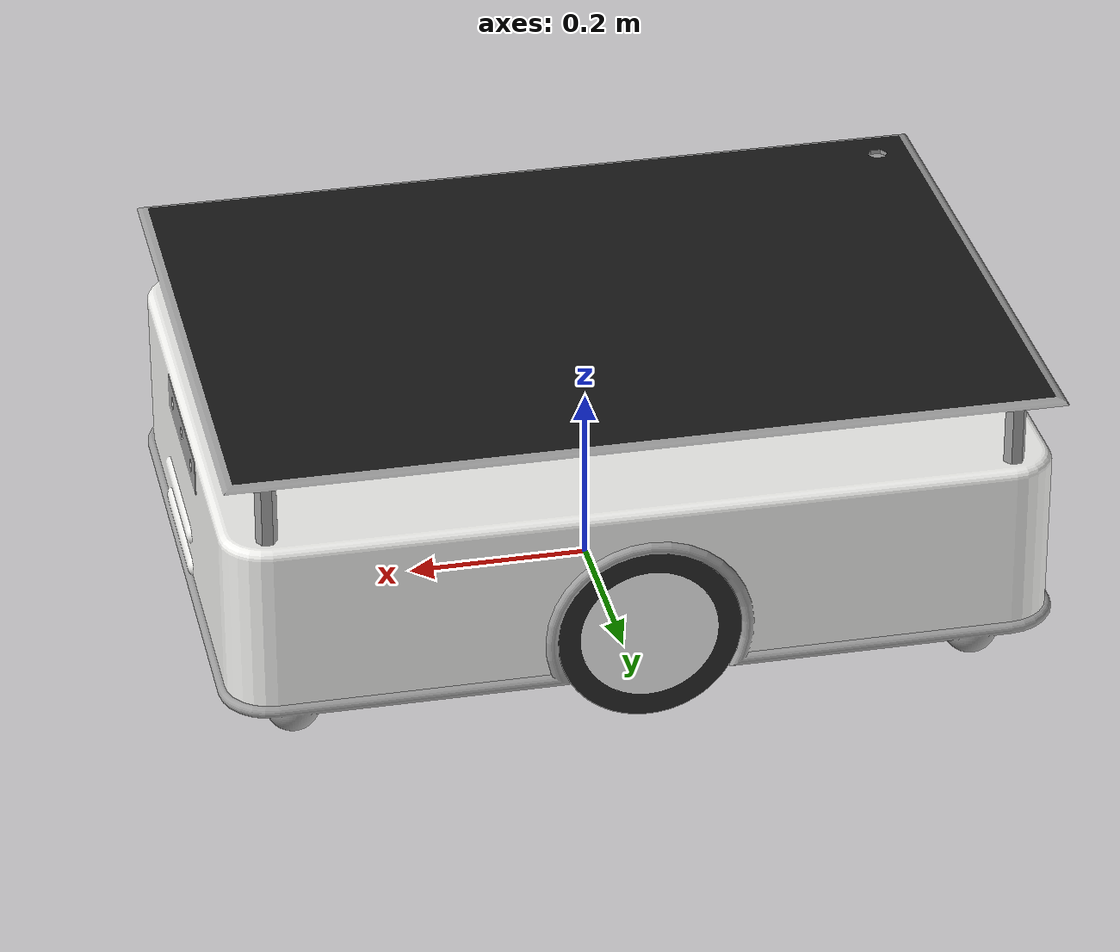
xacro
<?xml version="1.0"?>
<robot xmlns:xacro="http://www.ros.org/wiki/xacro" name="bcr_bot">

    <!--................................ XACRO CONSTANTS .............................. -->

    <xacro:property name="chassis_mass" value="70"/>
    <xacro:property name="chassis_length" value="0.9"/>
    <xacro:property name="chassis_width" value="0.64"/>
    <xacro:property name="chassis_height" value="0.19"/>

    <xacro:property name="traction_wheel_mass" value="1"/>
    <xacro:property name="traction_wheel_base" value="0.88"/>
    <xacro:property name="traction_max_wheel_torque" value="20000"/>
    <xacro:property name="traction_wheel_friction" value="5.0"/>

    <xacro:property name="trolley_wheel_mass" value="0.1"/>
    <xacro:property name="trolley_track_width" value="0.54"/>
    <xacro:property name="trolley_wheel_friction" value="0.0"/>
    <xacro:property name="trolley_wheel_radius" value="0.06"/>
    <!-- a small constant -->
    <xacro:property name="eps" value="0.002"/>

    <xacro:property name="traction_wheel_radius" value="0.1"/>
    <xacro:property name="traction_wheel_width" value="0.05"/>
    <xacro:property name="traction_track_width" value="0.6"/>

    <xacro:property name="two_d_lidar_update_rate" value="30"/>
    <xacro:property name="two_d_lidar_sample_size" value="361"/>
    <xacro:property name="two_d_lidar_min_angle" value="0"/>
    <xacro:property name="two_d_lidar_max_angle" value="360"/>
    <xacro:property name="two_d_lidar_min_range" value="0.55"/>
    <xacro:property name="two_d_lidar_max_range" value="16"/>

    <xacro:property name="camera_baseline" value="0.06"/>
    <xacro:property name="camera_height" value="0.10"/>
    <xacro:property name="camera_horizontal_fov" value="60"/>

    <xacro:arg name="robot_namespace" default=""/>
    <xacro:arg name="wheel_odom_topic" default="odom" />
    <xacro:arg name="camera_enabled" default="false" />
    <xacro:arg name="stereo_camera_enabled" default="false" />
    <xacro:arg name="two_d_lidar_enabled" default="false" />
    <xacro:arg name="publish_wheel_odom_tf" default="true" />
    <xacro:arg name="conveyor_enabled" default="false"/>
    <xacro:arg name="ground_truth_frame" default="map"/>
    <xacro:arg name="sim_gazebo" default="false" />
    <xacro:arg name="sim_ign" default="false" />
    <xacro:arg name="sim_gz" default="false" />
    <xacro:arg name="sim_mujoco" default="false" />
    <xacro:arg name="runtime_mjcf" default="false" />
    <xacro:arg name="odometry_source" default="world" />

    <!-- D415 DAE coordinates are in centimetres. The MuJoCo converter's
         DAE-to-OBJ path does not apply the declared unit conversion. -->
    <xacro:property name="d415_mesh_scale" value="1 1 1"/>
    <xacro:if value="$(arg runtime_mjcf)">
        <xacro:property name="d415_mesh_scale" value="0.01 0.01 0.01"/>
    </xacro:if>

    <xacro:property name="odometry_source" value="$(arg odometry_source)"/>

    <!-- ............................... LOAD MACROS ................................. -->

    <xacro:include filename="$(find bcr_bot)/urdf/materials.xacro"/>
    <xacro:include filename="$(find bcr_bot)/urdf/macros.xacro"/>

    <xacro:if value="$(arg sim_gazebo)">
        <xacro:include filename="$(find bcr_bot)/urdf/gazebo.xacro"/>
    </xacro:if>

    <xacro:if value="$(arg sim_ign)">
        <xacro:include filename="$(find bcr_bot)/urdf/ign.xacro"/>
    </xacro:if>

    <xacro:if value="$(arg sim_gz)">
        <xacro:include filename="$(find bcr_bot)/urdf/gz.xacro"/>
    </xacro:if>

    <xacro:if value="$(arg sim_mujoco)">
        <xacro:include filename="$(find bcr_bot)/urdf/mujoco_ros2_control.xacro"/>
    </xacro:if>

    <!-- ................................ BASE LINK .................................. -->
    <link name="base_footprint">
        <xacro:if value="$(arg runtime_mjcf)">
            <inertial>
                <mass value="0.000001"/>
                <inertia ixx="0.000001" ixy="0" ixz="0"
                         iyy="0.000001" iyz="0" izz="0.000001"/>
            </inertial>
        </xacro:if>
    </link>

    <link name="base_link"/>

    <joint name="base_joint" type="fixed">
        <parent link="base_footprint"/>
        <child link="base_link"/>
        <origin xyz="0.0 0 ${chassis_height/2 + traction_wheel_radius}" rpy="0 0 0.0" />
    </joint>

    <link name="chassis_link">

        <collision>
            <origin xyz="0 0 -0.05" rpy="0 0 0" />
            <geometry>
                <box size="${chassis_length} ${chassis_width} ${chassis_height}"/>
            </geometry>
        </collision>

        <visual>
            <origin xyz="0 0 -0.205" rpy="0 0 0"/>
            <geometry>
                <mesh filename="file://$(find bcr_bot)/meshes/bcr_bot_mesh.dae" scale="1 1 1"/>
            </geometry>
        </visual>

        <!-- The released converter derives collisions from URDF visuals.
             Transparent primitive proxies preserve the simple collision shapes. -->
        <xacro:if value="$(arg runtime_mjcf)">
            <visual>
                <origin xyz="0 0 -0.05"/>
                <geometry><box size="${chassis_length} ${chassis_width} ${chassis_height}"/></geometry>
                <material name="runtime_collision_proxy"><color rgba="0 0 0 0"/></material>
            </visual>
        </xacro:if>

        <inertial>
            <mass value="${chassis_mass}" />
            <xacro:box_inertia m="${chassis_mass}" x="${chassis_length}" y="${chassis_width}" z = "${chassis_height}"/>
        </inertial>

    </link>

    <joint name="chassis_joint" type="fixed">
        <parent link="base_link"/>
        <child link="chassis_link"/>
        <origin xyz="0.0 0 0" rpy="0 0 0.0" />
    </joint>

    <!-- ................................ WHEELS ..................................... -->

    <xacro:trolley_wheel cardinality="front" dexterity="left" origin_x="${chassis_length/2}" origin_y="${trolley_track_width/2}" origin_z="-${trolley_wheel_radius+chassis_height/2}"/>
    <xacro:trolley_wheel cardinality="front" dexterity="right" origin_x="${chassis_length/2}" origin_y="-${trolley_track_width/2}" origin_z="-${trolley_wheel_radius+chassis_height/2}"/>

    <xacro:trolley_wheel cardinality="back" dexterity="left" origin_x="-${chassis_length/2}" origin_y="${trolley_track_width/2}" origin_z="-${trolley_wheel_radius+chassis_height/2}"/>
    <xacro:trolley_wheel cardinality="back" dexterity="right" origin_x="-${chassis_length/2}" origin_y="-${trolley_track_width/2}" origin_z="-${trolley_wheel_radius+chassis_height/2}"/>

    <xacro:traction_wheel cardinality="middle" dexterity="left" origin_x="0" origin_y="${traction_track_width/2}" origin_z="-${chassis_height/2+2*trolley_wheel_radius+eps-traction_wheel_radius}"/>
    <xacro:traction_wheel cardinality="middle" dexterity="right" origin_x="0" origin_y="-${traction_track_width/2}" origin_z="-${chassis_height/2+2*trolley_wheel_radius+eps-traction_wheel_radius}"/>

    <!-- ............................. 2D LIDAR ........................................ -->

    <xacro:if value="$(arg two_d_lidar_enabled)">

        <link name="two_d_lidar">
            <collision>
                <origin xyz="0 0 0" rpy="0 0 0" />
                <geometry>
                    <cylinder length="0.06" radius="0.075"/>
                </geometry>
            </collision>

            <visual>
                <origin xyz="0 0 0" rpy="0 0 0"/>
                <geometry>
                    <cylinder length="0.06" radius="0.075"/>
                </geometry>
                <material name="aluminium"/>
            </visual>

            <inertial>
                <origin xyz="0 0 0" rpy="0 0 0" />
                <mass value="0.1"/>
                <xacro:cylinder_inertia m="0.1" r="0.075" h="0.06"/>
            </inertial>
        </link>

        <joint name="two_d_lidar_joint" type="fixed">
            <parent link="base_link"/>
            <child link="two_d_lidar"/>
            <origin xyz="0.0 0 0.08" rpy="0 0 0" />
        </joint>

        <gazebo reference="two_d_lidar">
            <material>Gazebo/White</material>
        </gazebo>

    </xacro:if>

    <!-- ............................. IMU ........................................ -->

    <link name="imu_frame"/>

    <joint name="imu_joint" type="fixed">
        <parent link="base_link"/>
        <child link="imu_frame"/>
        <origin xyz="0.0 0.0 0.08" rpy="0.0 0.0 0.0"/>
    </joint>

    <!-- ............................. CAMERA ........................................ -->

    <xacro:if value="$(arg camera_enabled)">

        <!-- KINECT CAMERA -->

        <link name="kinect_camera">

            <collision>
                <origin xyz="0 0 0" rpy="0 0 0" />
                <geometry>
                    <box size="0.07 0.3 0.09"/>
                </geometry>
            </collision>

            <visual>
                <origin xyz="0 0 0" rpy="0 0 0"/>
                <geometry>
                    <mesh filename="file://$(find bcr_bot)/meshes/kinect/d415.dae" scale="${d415_mesh_scale}"/>
                </geometry>
                <material name="black"/>
            </visual>

            <xacro:if value="$(arg runtime_mjcf)">
                <visual>
                    <geometry><box size="0.07 0.3 0.09"/></geometry>
                    <material name="runtime_collision_proxy"><color rgba="0 0 0 0"/></material>
                </visual>
            </xacro:if>

            <inertial>
                <mass value="0.01"/>
                <xacro:box_inertia m="0.01" x="0.07" y="0.3" z = "0.09"/>
            </inertial>

        </link>

        <joint name="kinect_camera_joint" type="fixed">
            <origin rpy="0 0 0" xyz="${chassis_length/2} 0 ${chassis_height/7}"/>
            <parent link="base_link"/>
            <child link="kinect_camera"/>
        </joint>

        <link name="kinect_camera_optical"/>

        <joint name="kinect_camera_optical_joint" type="fixed">
            <origin xyz="0 0 0" rpy="${-pi/2} 0 ${-pi/2}"/>
            <parent link="kinect_camera"/>
            <child link="kinect_camera_optical"/>
        </joint>

    </xacro:if>

    <!-- .............................STEREO CAMERA ........................................ -->

    <xacro:if value="$(arg stereo_camera_enabled)">

        <!-- STEREO CAMERA -->

        <link name="stereo_camera">

            <collision>
                <origin xyz="0 0 0" rpy="0 0 0" />
                <geometry>
                    <box size="0.07 0.3 0.09"/>
                </geometry>
            </collision>

            <visual>
                <origin xyz="0 0 0" rpy="0 0 0"/>
                <geometry>
                    <mesh filename="file://$(find bcr_bot)/meshes/kinect/d415.dae" scale="${d415_mesh_scale}"/>
                </geometry>
                <material name="black"/>
            </visual>

            <xacro:if value="$(arg runtime_mjcf)">
                <visual>
                    <geometry><box size="0.07 0.3 0.09"/></geometry>
                    <material name="runtime_collision_proxy"><color rgba="0 0 0 0"/></material>
                </visual>
            </xacro:if>

            <inertial>
                <mass value="0.01"/>
                <xacro:box_inertia m="0.01" x="0.07" y="0.3" z = "0.09"/>
            </inertial>

        </link>

        <joint name="stereo_camera_joint" type="fixed">
            <origin rpy="0 0 0" xyz="${chassis_length/2} 0 ${chassis_height/7}"/>
            <parent link="base_link"/>
            <child link="stereo_camera"/>
        </joint>

        <link name="stereo_camera_optical"/>

        <joint name="stereo_camera_optical_joint" type="fixed">
            <origin xyz="0 0 0" rpy="${-pi/2} 0 ${-pi/2}"/>
            <parent link="stereo_camera"/>
            <child link="stereo_camera_optical"/>
        </joint>

        <xacro:if value="$(arg runtime_mjcf)">
            <link name="stereo_camera_right_optical"/>

            <joint name="stereo_camera_right_optical_joint" type="fixed">
                <origin xyz="0 -0.12 0" rpy="${-pi/2} 0 ${-pi/2}"/>
                <parent link="stereo_camera"/>
                <child link="stereo_camera_right_optical"/>
            </joint>
        </xacro:if>

    </xacro:if>

    <!-- ............................. ROOF ........................................ -->

    <link name="roof_link">

        <xacro:if value="$(arg runtime_mjcf)">
            <visual>
                <geometry><box size="${chassis_length} ${chassis_width} 0.015"/></geometry>
                <material name="runtime_collision_proxy"><color rgba="0 0 0 0"/></material>
            </visual>
        </xacro:if>

        <collision>
            <origin xyz="0 0 0" rpy="0 0 0" />
            <geometry>
                <box size="${chassis_length} ${chassis_width} 0.015"/>
            </geometry>
        </collision>

        <inertial>
            <mass value="1"/>
            <xacro:box_inertia m="1" x="1" y="0.6" z = "0.015"/>
        </inertial>

    </link>

    <joint name="roof joint" type="fixed">
        <parent link="chassis_link"/>
        <child link="roof_link"/>
        <origin xyz="0 0 0.16" rpy="0 0 0" />
    </joint>

    <!-- ............................. CONVEYOR ........................................ -->

    <xacro:if value="$(arg conveyor_enabled)">

        <link name="conveyor_belt">

            <collision>
                <origin xyz="0 0 0" rpy="0 0 0" />
                <geometry>
                    <box size="1 0.6 0.015"/>
                </geometry>
            </collision>

            <visual>
                <origin xyz="0 0 0" rpy="0 0 0"/>
                <geometry>
                    <box size="1 0.6 0.015"/>
                </geometry>
            </visual>

            <inertial>
                <mass value="1"/>
                <xacro:box_inertia m="1" x="1" y="0.6" z = "0.015"/>
            </inertial>

        </link>

        <joint name="conveyor_joint" type="fixed">
            <parent link="base_link"/>
            <child link="conveyor_belt"/>
            <origin xyz="0 0 0.25" rpy="0 0 0" />
        </joint>

    </xacro:if>

</robot>

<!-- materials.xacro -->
<robot xmlns:xacro="http://www.ros.org/wiki/xacro" name="bcr_bot">

    <material name="black">
        <color rgba="0.0 0.0 0.0 1.0"/>
    </material>

    <material name="blue">
        <color rgba="0.0 0.0 0.8 1.0"/>
    </material>

    <material name="green">
        <color rgba="0.0 0.8 0.0 1.0"/>
    </material>

    <material name="yellow">
        <color rgba="1.0 1.0 0.0 1.0"/>
    </material>

    <material name="dark_grey">
        <color rgba="0.2 0.2 0.2 1.0"/>
    </material>

    <material name="orange">
        <color rgba="${255/255} ${108/255} ${10/255} 1.0"/>
    </material>

    <material name="brown">
        <color rgba="${139/255} ${69/255} ${19/255} 1.0"/>
    </material>

    <material name="red">
        <color rgba="0.8 0.0 0.0 1.0"/>
    </material>

    <material name="turquoise">
        <color rgba="${64/255} ${224/255} ${208/255} 1.0"/>
    </material>

    <material name="purple">
        <color rgba="${128/255} ${0/255} ${128/255} 1.0"/>
    </material>

    <material name="white">
        <color rgba="1.0 1.0 1.0 1.0"/>
    </material>

    <material name="aluminium">
        <color rgba="0.5 0.5 0.5 1"/>
    </material>

    <material name="plastic">
        <color rgba="0.1 0.1 0.1 1"/>
    </material>

</robot>

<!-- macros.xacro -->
<robot xmlns:xacro="http://www.ros.org/wiki/xacro" name="bcr_bot">

    <!--................................ INERTIA MATRICES .............................. -->

    <xacro:macro name="cylinder_inertia" params="m r h">
        <inertia ixx="${m * (3 * r * r + h * h) / 12}" ixy="0" ixz="0" iyy="${m * (3 * r * r + h * h) / 12}" iyz="0" izz="${m * r * r / 2}" />
    </xacro:macro>

    <xacro:macro name="box_inertia" params="m x y z">
        <inertia ixx="${m * (y * y + z * z) / 12}" ixy="0" ixz="0" iyy="${m * (x * x + z * z) / 12}" iyz="0" izz="${m * (y * y + x * x) / 12}" />
    </xacro:macro>

    <xacro:macro name="sphere_inertia" params="m r">
        <inertia ixx="${2 * m * r * r / 5}" ixy="0" ixz="0" iyy="${2 * m * r * r / 5}" iyz="0" izz="${2 * m * r * r / 5}" />
    </xacro:macro>

    <!-- ............................... TROLLEY WHEEL DEFINITION .............................. -->

    <xacro:macro name="trolley_wheel" params="cardinality dexterity origin_x origin_y origin_z">
        <link name="${cardinality}_${dexterity}_wheel">
            <xacro:if value="$(arg runtime_mjcf)">
                <visual>
                    <geometry>
                        <mesh filename="file://$(find bcr_bot)/meshes/mujoco_runtime/trolley_wheel.obj"
                              scale="${trolley_wheel_radius} ${trolley_wheel_radius} ${trolley_wheel_radius}"/>
                    </geometry>
                    <material name="runtime_collision_proxy"><color rgba="0 0 0 0"/></material>
                </visual>
            </xacro:if>
            <collision>
                <origin xyz="0 0 0" rpy="0 ${pi/2} ${pi/2}" />
                <geometry>
                    <xacro:if value="$(arg runtime_mjcf)">
                        <mesh filename="file://$(find bcr_bot)/meshes/mujoco_runtime/trolley_wheel.obj"
                              scale="${trolley_wheel_radius} ${trolley_wheel_radius} ${trolley_wheel_radius}"/>
                    </xacro:if>
                    <xacro:unless value="$(arg runtime_mjcf)">
                        <sphere radius="${trolley_wheel_radius}"/>
                    </xacro:unless>
                </geometry>
            </collision>

            <inertial>
                <origin xyz="0 0 0" rpy="0 0 0" />
                <mass value="${trolley_wheel_mass}"/>
                <xacro:sphere_inertia m="${trolley_wheel_mass}" r="${trolley_wheel_radius}"/>
            </inertial>

            <mu>0.0</mu>
        </link>

        <joint name="${cardinality}_${dexterity}_wheel_joint" type="fixed">
            <parent link="base_link"/>
            <child link="${cardinality}_${dexterity}_wheel"/>
            <origin xyz="${origin_x} ${origin_y} ${origin_z}" rpy="0 0 0" />
            <axis xyz="0 1 0" rpy="0 0 0" />
        </joint>

        <gazebo reference="${cardinality}_${dexterity}_wheel">
            <material>Gazebo/Black</material>
        </gazebo>
    </xacro:macro>

    <xacro:macro name="traction_wheel" params="cardinality dexterity origin_x origin_y origin_z">
        <link name="${cardinality}_${dexterity}_wheel">
            <xacro:if value="$(arg runtime_mjcf)">
                <visual>
                    <origin xyz="0 0 0" rpy="0 ${pi/2} ${pi/2}"/>
                    <geometry>
                        <mesh filename="file://$(find bcr_bot)/meshes/mujoco_runtime/traction_wheel.obj"
                              scale="${traction_wheel_radius} ${traction_wheel_radius} ${traction_wheel_width}"/>
                    </geometry>
                    <material name="runtime_collision_proxy"><color rgba="0 0 0 0"/></material>
                </visual>
            </xacro:if>
            <collision>
                <origin xyz="0 0 0" rpy="0 ${pi/2} ${pi/2}" />
                <geometry>
                    <xacro:if value="$(arg runtime_mjcf)">
                        <mesh filename="file://$(find bcr_bot)/meshes/mujoco_runtime/traction_wheel.obj"
                              scale="${traction_wheel_radius} ${traction_wheel_radius} ${traction_wheel_width}"/>
                    </xacro:if>
                    <xacro:unless value="$(arg runtime_mjcf)">
                        <cylinder length="${traction_wheel_width}" radius="${traction_wheel_radius}"/>
                    </xacro:unless>
                </geometry>
                <self_collide>false</self_collide>
            </collision>

            <inertial>
                <origin xyz="0 0 0" rpy="0 ${pi/2} ${pi/2}" />
                <mass value="${traction_wheel_mass}"/>
                <xacro:cylinder_inertia m="${traction_wheel_mass}" r="${traction_wheel_radius}" h="${traction_wheel_width}"/>
            </inertial>

            <mu>5.0</mu>
        </link>

        <joint name="${cardinality}_${dexterity}_wheel_joint" type="continuous">
            <parent link="base_link"/>
            <child link="${cardinality}_${dexterity}_wheel"/>
            <origin xyz="${origin_x} ${origin_y} ${origin_z}" rpy="0 0 0" />
            <axis xyz="0 1 0" rpy="0 0 0" />
        </joint>

        <gazebo reference="${cardinality}_${dexterity}_wheel">
            <material>Gazebo/Black</material>
        </gazebo>
    </xacro:macro>

</robot>
